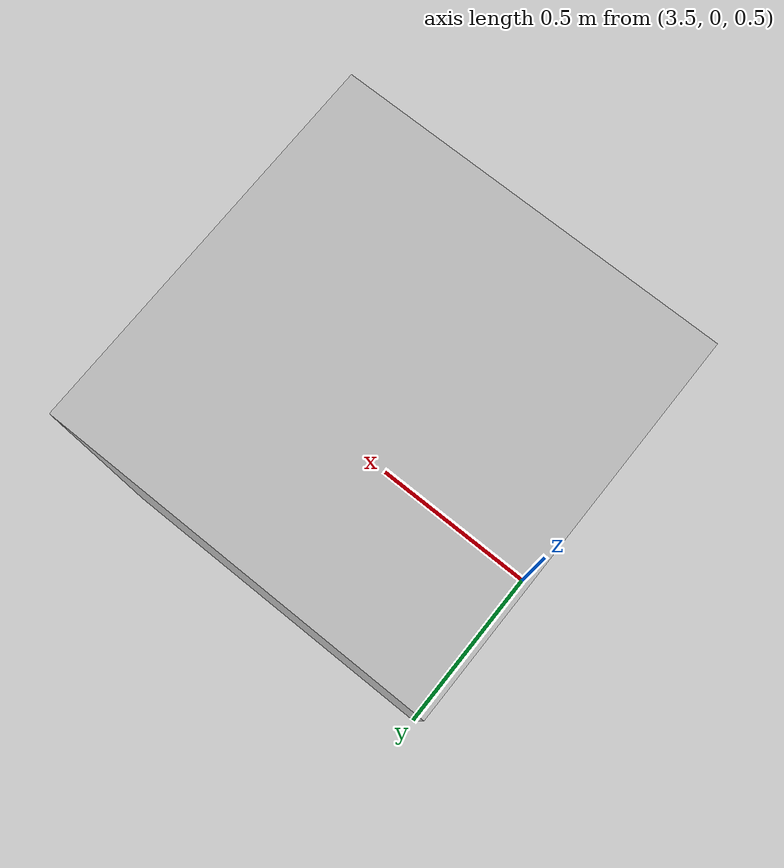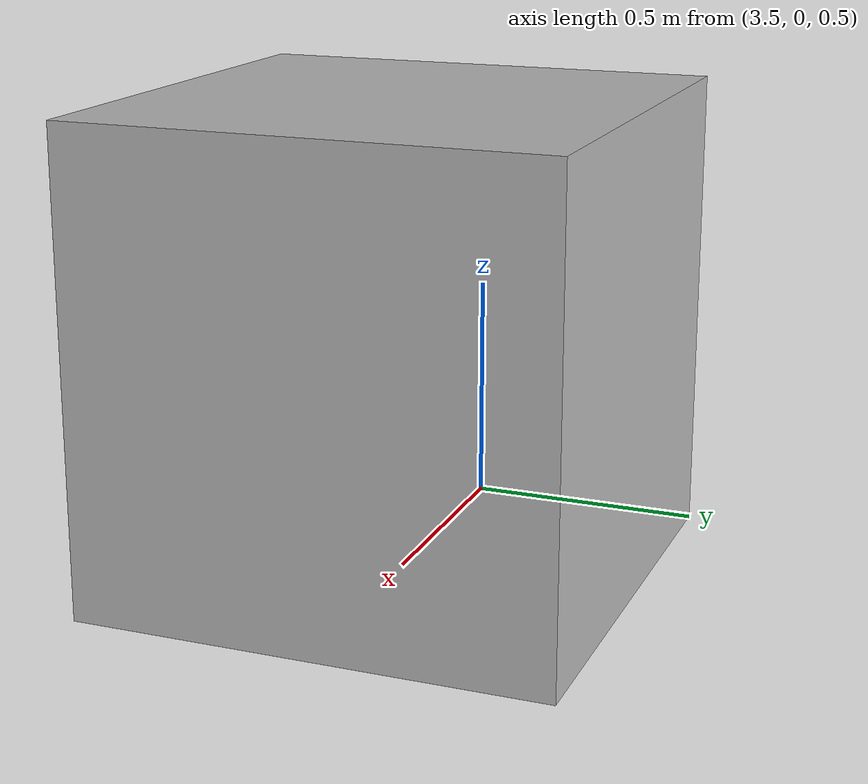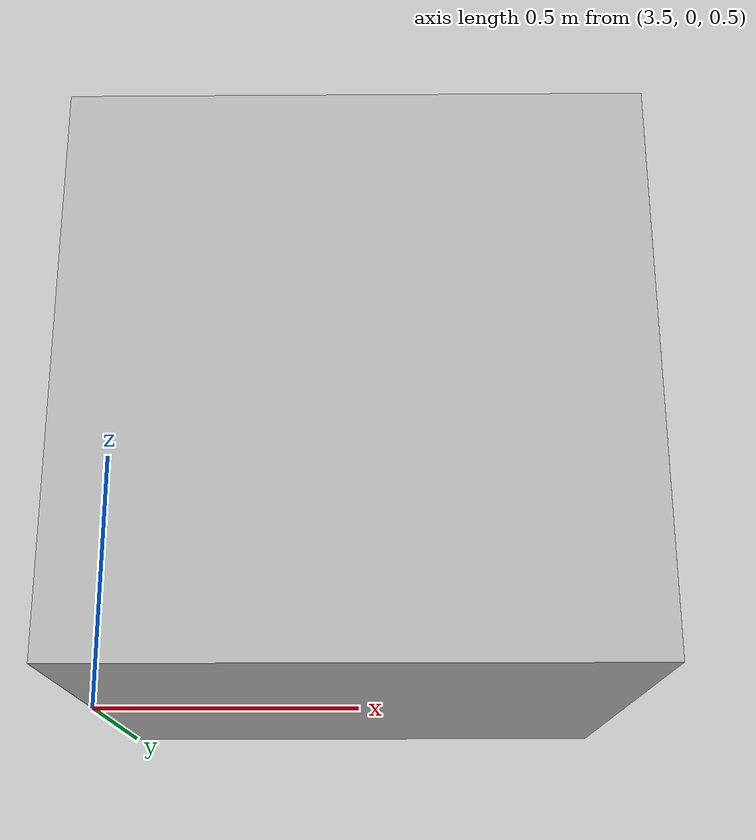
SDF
<?xml version="1.0" ?>
<sdf version="1.5">
    <model name="camera">
        <pose>4 0 1.0 0 0.0 3.14</pose>
        <link name="link">
            <pose>0 0 0 0 0 0</pose>
            <inertial>
                <mass>0.001</mass>
                <inertia>
                    <ixx>0.000166667</ixx>
                    <iyy>0.000166667</iyy>
                    <izz>0.000166667</izz>
                </inertia>
            </inertial>
            <collision name="collision">
                <geometry>
                    <box>
                        <size>1 1 1</size>
                    </box>
                </geometry>
            </collision>
            <visual name="visual">
                <geometry>
                    <box>
                        <size>1 1 1</size>
                    </box>
                </geometry>
            </visual>
            <sensor name="camera" type="camera">
                <camera>
                    <horizontal_fov>1.047</horizontal_fov>
                    <image>
                        <width>320</width>
                        <height>240</height>
                              <format>R8G8B8</format>
                    </image>
                    <clip>
                        <near>0.1</near>
                        <far>100</far>
                    </clip>
                </camera>
                <always_on>1</always_on>
                <update_rate>30</update_rate>
                <visualize>true</visualize>
                <topic>camera</topic>
                        <cameraInfoTopicName>camera_info</cameraInfoTopicName>
            </sensor>
        </link>
    </model>
</sdf>
